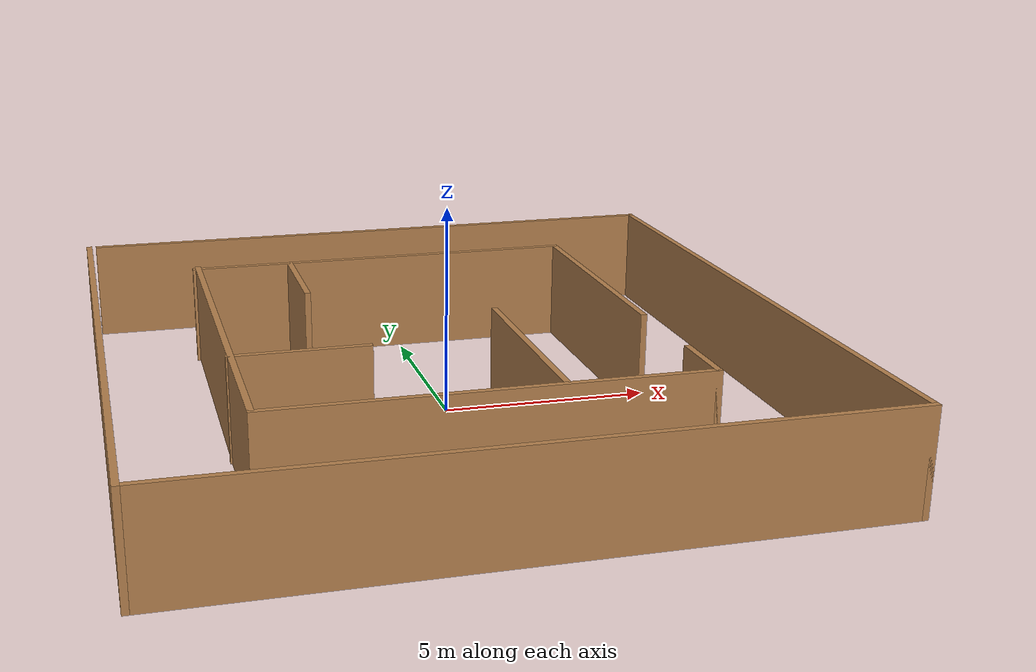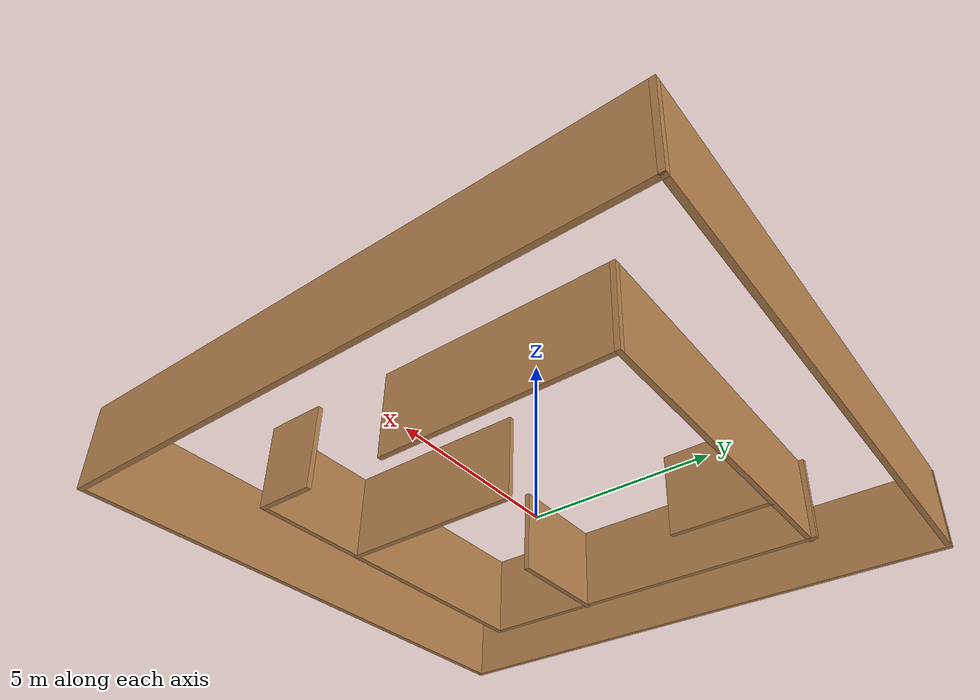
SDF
<?xml version='1.0'?>
<sdf version='1.7'>
  <model name='test_world1'>
    <pose>-0.112869 -0.038042 0 0 -0 0</pose>
    <link name='Wall_11'>
      <collision name='Wall_11_Collision'>
        <geometry>
          <box>
            <size>10 0.15 2.5</size>
          </box>
        </geometry>
        <pose>0 0 1.25 0 -0 0</pose>
      </collision>
      <visual name='Wall_11_Visual'>
        <pose>0 0 1.25 0 -0 0</pose>
        <geometry>
          <box>
            <size>10 0.15 2.5</size>
          </box>
        </geometry>
        <material>
          <script>
            <uri>file://media/materials/scripts/gazebo.material</uri>
            <name>Gazebo/Wood</name>
          </script>
          <ambient>1 1 1 1</ambient>
        </material>
        <meta>
          <layer>0</layer>
        </meta>
      </visual>
      <pose>-0.297904 -5.3492 0 0 -0 0</pose>
    </link>
    <link name='Wall_12'>
      <collision name='Wall_12_Collision'>
        <geometry>
          <box>
            <size>1.75 0.15 2.5</size>
          </box>
        </geometry>
        <pose>0 0 1.25 0 -0 0</pose>
      </collision>
      <visual name='Wall_12_Visual'>
        <pose>0 0 1.25 0 -0 0</pose>
        <geometry>
          <box>
            <size>1.75 0.15 2.5</size>
          </box>
        </geometry>
        <material>
          <script>
            <uri>file://media/materials/scripts/gazebo.material</uri>
            <name>Gazebo/Wood</name>
          </script>
          <ambient>1 1 1 1</ambient>
        </material>
        <meta>
          <layer>0</layer>
        </meta>
      </visual>
      <pose>4.6271 -4.5492 0 0 -0 1.5708</pose>
    </link>
    <link name='Wall_15'>
      <collision name='Wall_15_Collision'>
        <geometry>
          <box>
            <size>6.75 0.15 2.5</size>
          </box>
        </geometry>
        <pose>0 0 1.25 0 -0 0</pose>
      </collision>
      <visual name='Wall_15_Visual'>
        <pose>0 0 1.25 0 -0 0</pose>
        <geometry>
          <box>
            <size>6.75 0.15 2.5</size>
          </box>
        </geometry>
        <material>
          <script>
            <uri>file://media/materials/scripts/gazebo.material</uri>
            <name>Gazebo/Wood</name>
          </script>
          <ambient>1 1 1 1</ambient>
        </material>
        <meta>
          <layer>0</layer>
        </meta>
      </visual>
      <pose>4.5543 2.05108 0 0 -0 1.5708</pose>
    </link>
    <link name='Wall_16'>
      <collision name='Wall_16_Collision'>
        <geometry>
          <box>
            <size>10 0.15 2.5</size>
          </box>
        </geometry>
        <pose>0 0 1.25 0 -0 0</pose>
      </collision>
      <visual name='Wall_16_Visual'>
        <pose>0 0 1.25 0 -0 0</pose>
        <geometry>
          <box>
            <size>10 0.15 2.5</size>
          </box>
        </geometry>
        <material>
          <script>
            <uri>file://media/materials/scripts/gazebo.material</uri>
            <name>Gazebo/Wood</name>
          </script>
          <ambient>1 1 1 1</ambient>
        </material>
        <meta>
          <layer>0</layer>
        </meta>
      </visual>
      <pose>-0.370704 5.35108 0 0 -0 3.14159</pose>
    </link>
    <link name='Wall_18'>
      <collision name='Wall_18_Collision'>
        <geometry>
          <box>
            <size>3 0.15 2.5</size>
          </box>
        </geometry>
        <pose>0 0 1.25 0 -0 0</pose>
      </collision>
      <visual name='Wall_18_Visual'>
        <pose>0 0 1.25 0 -0 0</pose>
        <geometry>
          <box>
            <size>3 0.15 2.5</size>
          </box>
        </geometry>
        <material>
          <script>
            <uri>file://media/materials/scripts/gazebo.material</uri>
            <name>Gazebo/Wood</name>
          </script>
          <ambient>1 1 1 1</ambient>
        </material>
        <meta>
          <layer>0</layer>
        </meta>
      </visual>
      <pose>-2.82456 3.91641 0 0 -0 -1.5708</pose>
    </link>
    <link name='Wall_21'>
      <collision name='Wall_21_Collision'>
        <geometry>
          <box>
            <size>5.5 0.15 2.5</size>
          </box>
        </geometry>
        <pose>0 0 1.25 0 -0 0</pose>
      </collision>
      <visual name='Wall_21_Visual'>
        <pose>0 0 1.25 0 -0 0</pose>
        <geometry>
          <box>
            <size>5.5 0.15 2.5</size>
          </box>
        </geometry>
        <material>
          <script>
            <uri>file://media/materials/scripts/gazebo.material</uri>
            <name>Gazebo/Wood</name>
          </script>
          <ambient>1 1 1 1</ambient>
        </material>
        <meta>
          <layer>0</layer>
        </meta>
      </visual>
      <pose>1.29338 -2.66632 0 0 -0 1.5708</pose>
    </link>
    <link name='Wall_23'>
      <collision name='Wall_23_Collision'>
        <geometry>
          <box>
            <size>3.25 0.15 2.5</size>
          </box>
        </geometry>
        <pose>0 0 1.25 0 -0 0</pose>
      </collision>
      <visual name='Wall_23_Visual'>
        <pose>0 0 1.25 0 -0 0</pose>
        <geometry>
          <box>
            <size>3.25 0.15 2.5</size>
          </box>
        </geometry>
        <material>
          <script>
            <uri>file://media/materials/scripts/gazebo.material</uri>
            <name>Gazebo/Wood</name>
          </script>
          <ambient>1 1 1 1</ambient>
        </material>
        <meta>
          <layer>0</layer>
        </meta>
      </visual>
      <pose>-3.70943 -1.91677 0 0 -0 0</pose>
    </link>
    <link name='Wall_4'>
      <collision name='Wall_4_Collision'>
        <geometry>
          <box>
            <size>16.75 0.15 2.5</size>
          </box>
        </geometry>
        <pose>0 0 1.25 0 -0 0</pose>
      </collision>
      <visual name='Wall_4_Visual'>
        <pose>0 0 1.25 0 -0 0</pose>
        <geometry>
          <box>
            <size>16.75 0.15 2.5</size>
          </box>
        </geometry>
        <material>
          <script>
            <uri>file://media/materials/scripts/gazebo.material</uri>
            <name>Gazebo/Wood</name>
          </script>
          <ambient>1 1 1 1</ambient>
        </material>
        <meta>
          <layer>0</layer>
        </meta>
      </visual>
      <pose>-7.925 0 0 0 -0 -1.5708</pose>
    </link>
    <link name='Wall_5'>
      <collision name='Wall_5_Collision'>
        <geometry>
          <box>
            <size>16 0.15 2.5</size>
          </box>
        </geometry>
        <pose>0 0 1.25 0 -0 0</pose>
      </collision>
      <visual name='Wall_5_Visual'>
        <pose>0 0 1.25 0 -0 0</pose>
        <geometry>
          <box>
            <size>16 0.15 2.5</size>
          </box>
        </geometry>
        <material>
          <script>
            <uri>file://media/materials/scripts/gazebo.material</uri>
            <name>Gazebo/Wood</name>
          </script>
          <ambient>1 1 1 1</ambient>
        </material>
        <meta>
          <layer>0</layer>
        </meta>
      </visual>
      <pose>-0 -8.3 0 0 -0 0</pose>
    </link>
    <link name='Wall_6'>
      <collision name='Wall_6_Collision'>
        <geometry>
          <box>
            <size>16.75 0.15 2.5</size>
          </box>
        </geometry>
        <pose>0 0 1.25 0 -0 0</pose>
      </collision>
      <visual name='Wall_6_Visual'>
        <pose>0 0 1.25 0 -0 0</pose>
        <geometry>
          <box>
            <size>16.75 0.15 2.5</size>
          </box>
        </geometry>
        <material>
          <script>
            <uri>file://media/materials/scripts/gazebo.material</uri>
            <name>Gazebo/Wood</name>
          </script>
          <ambient>1 1 1 1</ambient>
        </material>
        <meta>
          <layer>0</layer>
        </meta>
      </visual>
      <pose>7.925 0 0 0 -0 1.5708</pose>
    </link>
    <link name='Wall_7'>
      <collision name='Wall_7_Collision'>
        <geometry>
          <box>
            <size>15.75 0.15 2.5</size>
          </box>
        </geometry>
        <pose>0 0 1.25 0 -0 0</pose>
      </collision>
      <visual name='Wall_7_Visual'>
        <pose>0 0 1.25 0 -0 0</pose>
        <geometry>
          <box>
            <size>15.75 0.15 2.5</size>
          </box>
        </geometry>
        <material>
          <script>
            <uri>file://media/materials/scripts/gazebo.material</uri>
            <name>Gazebo/Wood</name>
          </script>
          <ambient>1 1 1 1</ambient>
        </material>
        <meta>
          <layer>0</layer>
        </meta>
      </visual>
      <pose>0.125 8.3 0 0 -0 3.14159</pose>
    </link>
    <link name='Wall_9'>
      <collision name='Wall_9_Collision'>
        <geometry>
          <box>
            <size>11 0.15 2.5</size>
          </box>
        </geometry>
        <pose>0 0 1.25 0 -0 0</pose>
      </collision>
      <visual name='Wall_9_Visual'>
        <pose>0 0 1.25 0 -0 0</pose>
        <geometry>
          <box>
            <size>11 0.15 2.5</size>
          </box>
        </geometry>
        <material>
          <script>
            <uri>file://media/materials/scripts/gazebo.material</uri>
            <name>Gazebo/Wood</name>
          </script>
          <ambient>1 1 1 1</ambient>
        </material>
        <meta>
          <layer>0</layer>
        </meta>
      </visual>
      <pose>-5.2229 0.075801 0 0 -0 -1.5708</pose>
    </link>
    <static>1</static>
  </model>
</sdf>
